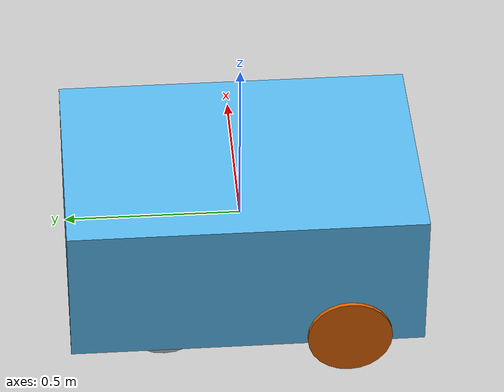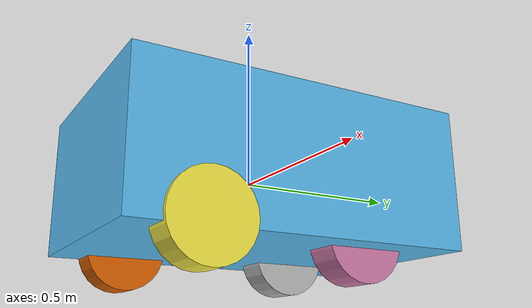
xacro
<?xml version="1.0" ?>

<robot name="SVehicle" xmlns:xacro="http://ros.org/wiki/xacro">

    <xacro:include filename="$(find vehicle_description)/urdf/macro.xacro" />
    <xacro:include filename="$(find vehicle_description)/urdf/robot_parameters.xacro" />
    <xacro:include filename="$(find vehicle_description)/urdf/simple_vehicle.gazebo" />

    <!-- //////////////////// GENERAL STRUCTURE //////////////////// -->

    <!-- BASEFOOTPRINT (Dummy baselink) -->
    <link name="base_footprint"/>

    <xacro:fix_joint name="base_footprint__${Robot_Base}"
        axis_xyz="0 0 1"
        origin_rpy="0 0 0" origin_xyz="0 0 0"
        parent="base_footprint" child="${Robot_Base}"/>

    <xacro:m_link_box name="${Robot_Base}"
        origin_rpy="0 0 0" origin_xyz="0 0 0"
        size="0.684 1 0.416"
        mass="15"
        ixx="1.0" ixy="0" ixz="0"
        iyy="1.0" iyz="0"
        izz="1.0"/>

    <!-- ////////////////// GENERAL STRUCTURE END //////////////////// -->

    <!-- //////////////////// WHEELS STRUCTURE //////////////////// -->

    <!-- FRONT LEFT WHEEL-->
    <xacro:rev_joint name="${FL_wheel}__Steer"
        axis_xyz="0 0 1"
        origin_rpy="0 0 0" origin_xyz="0.30241 -0.2868 -0.1848"
        parent="${Robot_Base}" child="${FL_wheel}_Bearing"
        limit_e="1000" limit_l="-0.785" limit_u="0.785" limit_v="0.5" />

    <xacro:m_link_box name="${FL_wheel}_Bearing"
        origin_rpy="0 0 0" origin_xyz="0 0 0"
        size="0.01 0.05 0.05"
        mass="0.25"
        ixx="1.0" ixy="0" ixz="0"
        iyy="1.0" iyz="0"
        izz="1.0"/>

    <xacro:cont_joint name="${FL_wheel}__Rear"
        axis_xyz="1 0 0"
        origin_rpy="0 0 0" origin_xyz="0 0 0"
        parent="${FL_wheel}_Bearing" child="${FL_wheel}"
        limit_e="1000" limit_v="0.5"/>

    <xacro:m_link_cylinder name="${FL_wheel}"
        origin_rpy="0 1.5708 0" origin_xyz="0 0 0"
        radius="0.12" length="0.103"
        mass="5"
        ixx="1.0" ixy="0" ixz="0"
        iyy="1.0" iyz="0"
        izz="1.0" />

    <!-- FRONT RIGHT WHEEL-->
    <xacro:rev_joint name="${FR_wheel}__Steer"
        axis_xyz="0 0 1"
        origin_rpy="0 0 0" origin_xyz="-0.30241 -0.2868 -0.1848"
        parent="${Robot_Base}" child="${FR_wheel}_Bearing"
        limit_e="1000" limit_l="-0.785" limit_u="0.785" limit_v="0.5" />

    <xacro:m_link_box name="${FR_wheel}_Bearing"
        origin_rpy="0 0 0" origin_xyz="0 0 0"
        size="0.01 0.05 0.05"
        mass="0.25"
        ixx="1.0" ixy="0" ixz="0"
        iyy="1.0" iyz="0"
        izz="1.0"/>

    <xacro:cont_joint name="${FR_wheel}__Rear"
        axis_xyz="1 0 0"
        origin_rpy="0 0 0" origin_xyz="0 0 0"
        parent="${FR_wheel}_Bearing" child="${FR_wheel}"
        limit_e="1000" limit_v="0.5"/>

    <xacro:m_link_cylinder name="${FR_wheel}"
        origin_rpy="0 1.5708 0" origin_xyz="0 0 0"
        radius="0.12" length="0.103"
        mass="5"
        ixx="1.0" ixy="0" ixz="0"
        iyy="1.0" iyz="0"
        izz="1.0" />

    <!-- BACK LEFT WHEEL-->
    <xacro:cont_joint name="${BL_wheel}__Rear"
        axis_xyz="1 0 0"
        origin_rpy="0 0 0" origin_xyz="0.1975 0.2328 -0.1848"
        parent="${Robot_Base}" child="${BL_wheel}"
        limit_e="1000" limit_v="0.5"/>

    <xacro:m_link_cylinder name="${BL_wheel}"
        origin_rpy="0 1.5708 0" origin_xyz="0 0 0"
        radius="0.12" length="0.103"
        mass="5"
        ixx="1.0" ixy="0" ixz="0"
        iyy="1.0" iyz="0"
        izz="1.0" />

    <!-- BACK RIGHT WHEEL-->
    <xacro:cont_joint name="${BR_wheel}__Rear"
        axis_xyz="1 0 0"
        origin_rpy="0 0 0" origin_xyz="-0.1975 0.2328 -0.1848"
        parent="${Robot_Base}" child="${BR_wheel}"
        limit_e="1000" limit_v="0.5"/>

    <xacro:m_link_cylinder name="${BR_wheel}"
        origin_rpy="0 1.5708 0" origin_xyz="0 0 0"
        radius="0.12" length="0.103"
        mass="5"
        ixx="1.0" ixy="0" ixz="0"
        iyy="1.0" iyz="0"
        izz="1.0" />

    <!-- //////////////////// WHEELS STRUCTURE END //////////////////// -->

</robot>

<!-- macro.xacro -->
<robot xmlns:xacro="http://www.ros.org/wiki/xacro">

  <!-- FIX JOINT MACRO -->
  <xacro:macro name="fix_joint" params="name axis_xyz origin_rpy origin_xyz parent child">

    <joint name="${name}" type="fixed">
      <axis xyz="${axis_xyz}" />
      <origin rpy="${origin_rpy}" xyz="${origin_xyz}" />
      <parent link="${parent}" />
      <child link="${child}" />
    </joint>

  </xacro:macro>

  <!-- CONTINUOUS JOINT MACRO -->
  <xacro:macro name="cont_joint" params="name axis_xyz origin_rpy origin_xyz parent child limit_e limit_v">

    <joint name="${name}" type="continuous">
      <axis xyz="${axis_xyz}" />
      <limit effort="${limit_e}" velocity="${limit_v}" />
      <origin rpy="${origin_rpy}" xyz="${origin_xyz}" />
      <parent link="${parent}" />
      <child link="${child}" />
      <dynamics damping="0.0" friction="0.0"/>
    </joint>

    <transmission name="trans_${name}">
      <type>transmission_interface/SimpleTransmission</type>
      <joint name="${name}">
        <hardwareInterface>hardware_interface/VelocityJointInterface</hardwareInterface>
      </joint>
      <actuator name="motor_${name}">
        <hardwareInterface>hardware_interface/VelocityJointInterface</hardwareInterface>
        <mechanicalReduction>1</mechanicalReduction>
      </actuator>
    </transmission>

  </xacro:macro>

  <!-- REVOLUTE JOINT MACRO -->

  <xacro:macro name="rev_joint" params="name axis_xyz origin_rpy origin_xyz parent child limit_e limit_l limit_u limit_v">

    <joint name="${name}" type="revolute">
      <axis xyz="${axis_xyz}" />
      <limit effort="${limit_e}" lower="${limit_l}" upper="${limit_u}" velocity="${limit_v}" />
      <origin rpy="${origin_rpy}" xyz="${origin_xyz}" />
      <parent link="${parent}" />
      <child link="${child}" />
      <dynamics damping="0.0" friction="0.0"/>
    </joint>

    <transmission name="trans_${name}">
      <type>transmission_interface/SimpleTransmission</type>
      <joint name="${name}">
        <hardwareInterface>hardware_interface/EffortJointInterface</hardwareInterface>
      </joint>
      <actuator name="motor_${name}">
        <hardwareInterface>hardware_interface/EffortJointInterface</hardwareInterface>
        <mechanicalReduction>1</mechanicalReduction>
      </actuator>
    </transmission>

  </xacro:macro>

  <!-- //////////////////////////////////////////// USEFUL MACROS //////////////////////////////////////////// -->

  <!-- CILINDER SHAPE LINK MACRO -->

  <xacro:macro name="m_link_cylinder" params="name origin_xyz origin_rpy radius length mass ixx ixy ixz iyy iyz izz">

    <link name="${name}">
      <visual>
        <origin rpy="${origin_rpy}" xyz="${origin_xyz}" />
        <geometry>
          <cylinder radius="${radius}" length="${length}" />
        </geometry>
      </visual>
      <collision>
        <origin rpy="${origin_rpy}" xyz="${origin_xyz}" />
        <geometry>
          <cylinder radius="${radius}" length="${length}" />
        </geometry>
        </collision>
      <inertial>
        <mass value="${mass}" />
        <origin rpy="${origin_rpy}" xyz="${origin_xyz}" />
        <inertia ixx="${ixx}" ixy="${ixy}" ixz="${ixz}" iyy="${iyy}" iyz="${iyz}" izz="${izz}" />
      </inertial>
    </link>

  </xacro:macro>

  <!-- BOX SHAPE LINK MACRO -->

  <xacro:macro name="m_link_box" params="name origin_xyz origin_rpy size mass ixx ixy ixz iyy iyz izz">

    <link name="${name}">
      <visual>
        <origin rpy="${origin_rpy}" xyz="${origin_xyz}" />
        <geometry>
          <box size="${size}" />
        </geometry>
      </visual>
    <collision>
        <origin rpy="${origin_rpy}" xyz="${origin_xyz}" />
        <geometry>
          <box size="${size}" />
        </geometry>
      </collision>
    <inertial>
        <mass value="${mass}" />
        <origin rpy="${origin_rpy}" xyz="${origin_xyz}" />
        <inertia ixx="${ixx}" ixy="${ixy}" ixz="${ixz}" iyy="${iyy}" iyz="${iyz}" izz="${izz}" />
      </inertial>
    </link>

  </xacro:macro>

</robot>

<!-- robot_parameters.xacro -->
<robot xmlns:xacro="http://www.ros.org/wiki/xacro">

  <xacro:property name="Robot_Base" value="vehicle_base" />
  <xacro:property name="FR_wheel" value="front_right_wheel" />
  <xacro:property name="FL_wheel" value="front_left_wheel" />
  <xacro:property name="BR_wheel" value="backward_right_wheel" />
  <xacro:property name="BL_wheel" value="backward_left_wheel" />
  <xacro:property name="Robot_head" value="vehicle_head" />
  <xacro:property name="Locker_box" value="vehicle_locker" />
  <xacro:property name="Truck" value="vehicle_truck" />

</robot>
